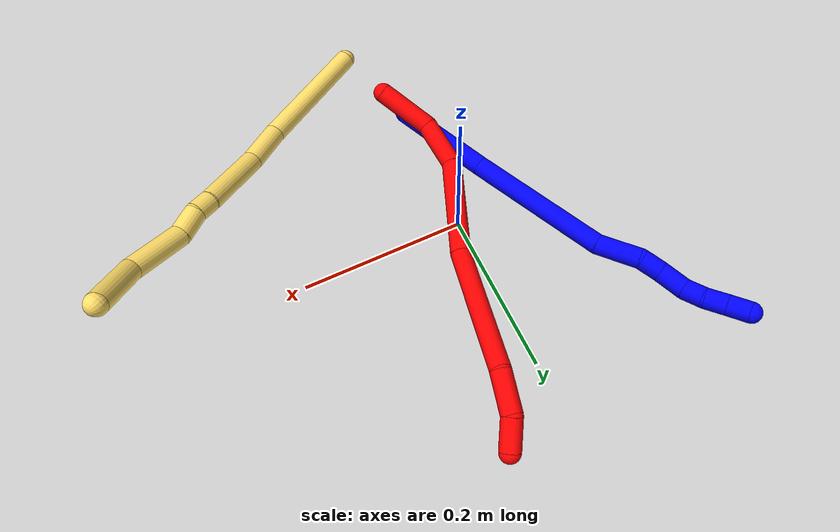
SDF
<sdf version="1.7">
 <world name="default">
  <model name="photoneo_s_sensor">
   <static>1</static>
   <pose>0 0 2 1.57079 1.57079 3.14159</pose>
   <link name="link">
    <inertial><mass>0.1</mass></inertial>
    <sensor name="sensor" type="depth">
     <update_rate>30</update_rate>
     <camera>
      <horizontal_fov>1.22</horizontal_fov>
      <image><width>1920</width><height>1200</height><format>B8G8R8</format></image>
      <clip><near>0.1</near><far>2</far></clip>
      <depth_camera><output>points</output></depth_camera>
     </camera>
     <plugin name="camera_plugin" filename="libgazebo_ros_depth_camera.so">
      <baseline>0.2</baseline>
      <alwaysOn>1</alwaysOn>
      <updateRate>0.0</updateRate>
      <cameraName>camera_ir</cameraName>
      <imageTopicName>/camera/color/image_raw</imageTopicName>
      <cameraInfoTopicName>/camera/color/camera_info</cameraInfoTopicName>
      <depthImageTopicName>/camera/depth/image_raw</depthImageTopicName>
      <depthImageCameraInfoTopicName>/camera/depth/camera_info</depthImageCameraInfoTopicName>
      <pointCloudTopicName>/camera/depth/points</pointCloudTopicName>
      <frameName>fr_optical</frameName>
      <pointCloudCutoff>0.1</pointCloudCutoff>
      <pointCloudCutoffMax>2.0</pointCloudCutoffMax>
      <distortionK1>0</distortionK1>
      <distortionK2>0</distortionK2>
      <distortionK3>0</distortionK3>
      <distortionT1>0</distortionT1>
      <distortionT2>0</distortionT2>
      <CxPrime>0</CxPrime>
      <Cx>0</Cx>
      <Cy>0</Cy>
      <focalLength>0</focalLength>
      <hackBaseline>0</hackBaseline>
     </plugin>
    </sensor>
   </link>
  </model>
  <model name="bin">
   <static>1</static>
   <link name="bottom">
    <collision name="collision-bottom">
     <pose>0 0 -0.01 0 -0 0</pose>
     <geometry><box><size>0.8 0.6 0.02</size></box></geometry>
     <surface>
      <friction><ode><mu>100</mu><mu2>100</mu2></ode></friction>
      <contact><collide_bitmask>65535</collide_bitmask></contact>
     </surface>
    </collision>
   </link>
   <link name="west_wall">
    <collision name="collision-west_wall">
     <pose>-0.41 0 0.1 0 -0 0</pose>
     <geometry><box><size>0.02 0.6 0.2</size></box></geometry>
     <surface>
      <friction><ode><mu>100</mu><mu2>100</mu2></ode></friction>
      <contact><collide_bitmask>65535</collide_bitmask></contact>
     </surface>
    </collision>
   </link>
   <link name="east_wall">
    <collision name="collision-east_wall">
     <pose>0.41 0 0.1 0 -0 0</pose>
     <geometry><box><size>0.02 0.6 0.2</size></box></geometry>
     <surface>
      <friction><ode><mu>100</mu><mu2>100</mu2></ode></friction>
      <contact><collide_bitmask>65535</collide_bitmask></contact>
     </surface>
    </collision>
   </link>
   <link name="south_wall">
    <collision name="collision-south_wall">
     <pose>0 -0.31 0.1 0 -0 0</pose>
     <geometry><box><size>0.8 0.02 0.2</size></box></geometry>
     <surface>
      <friction><ode><mu>100</mu><mu2>100</mu2></ode></friction>
      <contact><collide_bitmask>65535</collide_bitmask></contact>
     </surface>
    </collision>
   </link>
   <link name="north_wall">
    <collision name="collision-north_wall">
     <pose>0 0.31 0.1 0 -0 0</pose>
     <geometry><box><size>0.8 0.02 0.2</size></box></geometry>
     <surface>
      <friction><ode><mu>100</mu><mu2>100</mu2></ode></friction>
      <contact><collide_bitmask>65535</collide_bitmask></contact>
     </surface>
    </collision>
   </link>
  </model>
  <model name="1">
   <static>0</static>
   <link name="1">
    <collision name="collision-cylinder-e_1_1_4">
     <pose>-0.016939 0.032809 0.05292 -0.554974 -0.265625 0.076071</pose>
     <geometry><cylinder><radius>0.0125</radius><length>0.129056</length></cylinder></geometry>
     <surface>
      <friction><ode><mu>1.16</mu><mu2>1.16</mu2><slip1>0</slip1><slip2>0</slip2></ode></friction>
      <contact><ode><kp>1e+06</kp><kd>1</kd><max_vel>0</max_vel><min_depth>0.001</min_depth></ode></contact>
     </surface>
    </collision>
    <visual name="visual-cylinder-e_1_1_4">
     <pose>-0.016939 0.032809 0.05292 -0.554974 -0.265625 0.076071</pose>
     <geometry><cylinder><radius>0.0125</radius><length>0.129056</length></cylinder></geometry>
     <material><ambient>0 0 1 1</ambient></material>
    </visual>
    <collision name="collision-cylinder-e_2_4_5">
     <pose>-0.055065 0.111319 0.180028 -0.552117 -0.238514 0.067865</pose>
     <geometry><cylinder><radius>0.0125</radius><length>0.179348</length></cylinder></geometry>
     <surface>
      <friction><ode><mu>1.16</mu><mu2>1.16</mu2><slip1>0</slip1><slip2>0</slip2></ode></friction>
      <contact><ode><kp>1e+06</kp><kd>1</kd><max_vel>0</max_vel><min_depth>0.001</min_depth></ode></contact>
     </surface>
    </collision>
    <visual name="visual-cylinder-e_2_4_5">
     <pose>-0.055065 0.111319 0.180028 -0.552117 -0.238514 0.067865</pose>
     <geometry><cylinder><radius>0.0125</radius><length>0.179348</length></cylinder></geometry>
     <material><ambient>0 0 1 1</ambient></material>
    </visual>
    <collision name="collision-cylinder-e_3_5_6">
     <pose>-0.077482 0.166369 0.279145 -0.358774 -0.046206 0.00838</pose>
     <geometry><cylinder><radius>0.0125</radius><length>0.053304</length></cylinder></geometry>
     <surface>
      <friction><ode><mu>1.16</mu><mu2>1.16</mu2><slip1>0</slip1><slip2>0</slip2></ode></friction>
      <contact><ode><kp>1e+06</kp><kd>1</kd><max_vel>0</max_vel><min_depth>0.001</min_depth></ode></contact>
     </surface>
    </collision>
    <visual name="visual-cylinder-e_3_5_6">
     <pose>-0.077482 0.166369 0.279145 -0.358774 -0.046206 0.00838</pose>
     <geometry><cylinder><radius>0.0125</radius><length>0.053304</length></cylinder></geometry>
     <material><ambient>0 0 1 1</ambient></material>
    </visual>
    <collision name="collision-cylinder-e_4_6_7">
     <pose>-0.08396 0.179466 0.315599 -0.314449 -0.408537 0.065659</pose>
     <geometry><cylinder><radius>0.0125</radius><length>0.026413</length></cylinder></geometry>
     <surface>
      <friction><ode><mu>1.16</mu><mu2>1.16</mu2><slip1>0</slip1><slip2>0</slip2></ode></friction>
      <contact><ode><kp>1e+06</kp><kd>1</kd><max_vel>0</max_vel><min_depth>0.001</min_depth></ode></contact>
     </surface>
    </collision>
    <visual name="visual-cylinder-e_4_6_7">
     <pose>-0.08396 0.179466 0.315599 -0.314449 -0.408537 0.065659</pose>
     <geometry><cylinder><radius>0.0125</radius><length>0.026413</length></cylinder></geometry>
     <material><ambient>0 0 1 1</ambient></material>
    </visual>
    <collision name="collision-cylinder-e_5_7_8">
     <pose>-0.094919 0.191103 0.34129 -0.508107 -0.338753 0.088755</pose>
     <geometry><cylinder><radius>0.0125</radius><length>0.034383</length></cylinder></geometry>
     <surface>
      <friction><ode><mu>1.16</mu><mu2>1.16</mu2><slip1>0</slip1><slip2>0</slip2></ode></friction>
      <contact><ode><kp>1e+06</kp><kd>1</kd><max_vel>0</max_vel><min_depth>0.001</min_depth></ode></contact>
     </surface>
    </collision>
    <visual name="visual-cylinder-e_5_7_8">
     <pose>-0.094919 0.191103 0.34129 -0.508107 -0.338753 0.088755</pose>
     <geometry><cylinder><radius>0.0125</radius><length>0.034383</length></cylinder></geometry>
     <material><ambient>0 0 1 1</ambient></material>
    </visual>
    <collision name="collision-cylinder-e_6_8_9">
     <pose>-0.099545 0.20709 0.365734 -0.667317 0.082847 -0.028731</pose>
     <geometry><cylinder><radius>0.0125</radius><length>0.02626</length></cylinder></geometry>
     <surface>
      <friction><ode><mu>1.16</mu><mu2>1.16</mu2><slip1>0</slip1><slip2>0</slip2></ode></friction>
      <contact><ode><kp>1e+06</kp><kd>1</kd><max_vel>0</max_vel><min_depth>0.001</min_depth></ode></contact>
     </surface>
    </collision>
    <visual name="visual-cylinder-e_6_8_9">
     <pose>-0.099545 0.20709 0.365734 -0.667317 0.082847 -0.028731</pose>
     <geometry><cylinder><radius>0.0125</radius><length>0.02626</length></cylinder></geometry>
     <material><ambient>0 0 1 1</ambient></material>
    </visual>
    <collision name="collision-cylinder-e_7_9_10">
     <pose>-0.097948 0.220291 0.387719 -0.411105 0.039987 -0.008338</pose>
     <geometry><cylinder><radius>0.0125</radius><length>0.025563</length></cylinder></geometry>
     <surface>
      <friction><ode><mu>1.16</mu><mu2>1.16</mu2><slip1>0</slip1><slip2>0</slip2></ode></friction>
      <contact><ode><kp>1e+06</kp><kd>1</kd><max_vel>0</max_vel><min_depth>0.001</min_depth></ode></contact>
     </surface>
    </collision>
    <visual name="visual-cylinder-e_7_9_10">
     <pose>-0.097948 0.220291 0.387719 -0.411105 0.039987 -0.008338</pose>
     <geometry><cylinder><radius>0.0125</radius><length>0.025563</length></cylinder></geometry>
     <material><ambient>0 0 1 1</ambient></material>
    </visual>
    <collision name="collision-cylinder-e_8_10_2">
     <pose>-0.096886 0.230856 0.41103 -0.43985 0.042924 -0.009597</pose>
     <geometry><cylinder><radius>0.0125</radius><length>0.025674</length></cylinder></geometry>
     <surface>
      <friction><ode><mu>1.16</mu><mu2>1.16</mu2><slip1>0</slip1><slip2>0</slip2></ode></friction>
      <contact><ode><kp>1e+06</kp><kd>1</kd><max_vel>0</max_vel><min_depth>0.001</min_depth></ode></contact>
     </surface>
    </collision>
    <visual name="visual-cylinder-e_8_10_2">
     <pose>-0.096886 0.230856 0.41103 -0.43985 0.042924 -0.009597</pose>
     <geometry><cylinder><radius>0.0125</radius><length>0.025674</length></cylinder></geometry>
     <material><ambient>0 0 1 1</ambient></material>
    </visual>
    <collision name="collision-sphere-2">
     <pose>-0.096335 0.236317 0.422635 0 -0 0</pose>
     <geometry><sphere><radius>0.0125</radius></sphere></geometry>
     <surface>
      <friction><ode><mu>1.16</mu><mu2>1.16</mu2><slip1>0</slip1><slip2>0</slip2></ode></friction>
      <contact><ode><kp>1e+06</kp><kd>1</kd><max_vel>0</max_vel><min_depth>0.001</min_depth></ode></contact>
     </surface>
    </collision>
    <visual name="visual-sphere-2">
     <pose>-0.096335 0.236317 0.422635 0 -0 0</pose>
     <geometry><sphere><radius>0.0125</radius></sphere></geometry>
     <material><ambient>0 0 1 1</ambient></material>
    </visual>
    <collision name="collision-sphere-10">
     <pose>-0.097437 0.225395 0.399426 0 -0 0</pose>
     <geometry><sphere><radius>0.0125</radius></sphere></geometry>
     <surface>
      <friction><ode><mu>1.16</mu><mu2>1.16</mu2><slip1>0</slip1><slip2>0</slip2></ode></friction>
      <contact><ode><kp>1e+06</kp><kd>1</kd><max_vel>0</max_vel><min_depth>0.001</min_depth></ode></contact>
     </surface>
    </collision>
    <visual name="visual-sphere-10">
     <pose>-0.097437 0.225395 0.399426 0 -0 0</pose>
     <geometry><sphere><radius>0.0125</radius></sphere></geometry>
     <material><ambient>0 0 1 1</ambient></material>
    </visual>
    <collision name="collision-sphere-9">
     <pose>-0.098459 0.215188 0.376012 0 -0 0</pose>
     <geometry><sphere><radius>0.0125</radius></sphere></geometry>
     <surface>
      <friction><ode><mu>1.16</mu><mu2>1.16</mu2><slip1>0</slip1><slip2>0</slip2></ode></friction>
      <contact><ode><kp>1e+06</kp><kd>1</kd><max_vel>0</max_vel><min_depth>0.001</min_depth></ode></contact>
     </surface>
    </collision>
    <visual name="visual-sphere-9">
     <pose>-0.098459 0.215188 0.376012 0 -0 0</pose>
     <geometry><sphere><radius>0.0125</radius></sphere></geometry>
     <material><ambient>0 0 1 1</ambient></material>
    </visual>
    <collision name="collision-sphere-4">
     <pose>-0.033879 0.065617 0.10584 0 -0 0</pose>
     <geometry><sphere><radius>0.0125</radius></sphere></geometry>
     <surface>
      <friction><ode><mu>1.16</mu><mu2>1.16</mu2><slip1>0</slip1><slip2>0</slip2></ode></friction>
      <contact><ode><kp>1e+06</kp><kd>1</kd><max_vel>0</max_vel><min_depth>0.001</min_depth></ode></contact>
     </surface>
    </collision>
    <visual name="visual-sphere-4">
     <pose>-0.033879 0.065617 0.10584 0 -0 0</pose>
     <geometry><sphere><radius>0.0125</radius></sphere></geometry>
     <material><ambient>0 0 1 1</ambient></material>
    </visual>
    <collision name="collision-sphere-1">
     <geometry><sphere><radius>0.0125</radius></sphere></geometry>
     <surface>
      <friction><ode><mu>1.16</mu><mu2>1.16</mu2><slip1>0</slip1><slip2>0</slip2></ode></friction>
      <contact><ode><kp>1e+06</kp><kd>1</kd><max_vel>0</max_vel><min_depth>0.001</min_depth></ode></contact>
     </surface>
    </collision>
    <visual name="visual-sphere-1">
     <geometry><sphere><radius>0.0125</radius></sphere></geometry>
     <material><ambient>0 0 1 1</ambient></material>
    </visual>
    <collision name="collision-sphere-8">
     <pose>-0.100632 0.198992 0.355456 0 -0 0</pose>
     <geometry><sphere><radius>0.0125</radius></sphere></geometry>
     <surface>
      <friction><ode><mu>1.16</mu><mu2>1.16</mu2><slip1>0</slip1><slip2>0</slip2></ode></friction>
      <contact><ode><kp>1e+06</kp><kd>1</kd><max_vel>0</max_vel><min_depth>0.001</min_depth></ode></contact>
     </surface>
    </collision>
    <visual name="visual-sphere-8">
     <pose>-0.100632 0.198992 0.355456 0 -0 0</pose>
     <geometry><sphere><radius>0.0125</radius></sphere></geometry>
     <material><ambient>0 0 1 1</ambient></material>
    </visual>
    <collision name="collision-sphere-5">
     <pose>-0.076251 0.157021 0.254216 0 -0 0</pose>
     <geometry><sphere><radius>0.0125</radius></sphere></geometry>
     <surface>
      <friction><ode><mu>1.16</mu><mu2>1.16</mu2><slip1>0</slip1><slip2>0</slip2></ode></friction>
      <contact><ode><kp>1e+06</kp><kd>1</kd><max_vel>0</max_vel><min_depth>0.001</min_depth></ode></contact>
     </surface>
    </collision>
    <visual name="visual-sphere-5">
     <pose>-0.076251 0.157021 0.254216 0 -0 0</pose>
     <geometry><sphere><radius>0.0125</radius></sphere></geometry>
     <material><ambient>0 0 1 1</ambient></material>
    </visual>
    <collision name="collision-sphere-6">
     <pose>-0.078713 0.175717 0.304073 0 -0 0</pose>
     <geometry><sphere><radius>0.0125</radius></sphere></geometry>
     <surface>
      <friction><ode><mu>1.16</mu><mu2>1.16</mu2><slip1>0</slip1><slip2>0</slip2></ode></friction>
      <contact><ode><kp>1e+06</kp><kd>1</kd><max_vel>0</max_vel><min_depth>0.001</min_depth></ode></contact>
     </surface>
    </collision>
    <visual name="visual-sphere-6">
     <pose>-0.078713 0.175717 0.304073 0 -0 0</pose>
     <geometry><sphere><radius>0.0125</radius></sphere></geometry>
     <material><ambient>0 0 1 1</ambient></material>
    </visual>
    <collision name="collision-sphere-7">
     <pose>-0.089206 0.183214 0.327124 0 -0 0</pose>
     <geometry><sphere><radius>0.0125</radius></sphere></geometry>
     <surface>
      <friction><ode><mu>1.16</mu><mu2>1.16</mu2><slip1>0</slip1><slip2>0</slip2></ode></friction>
      <contact><ode><kp>1e+06</kp><kd>1</kd><max_vel>0</max_vel><min_depth>0.001</min_depth></ode></contact>
     </surface>
    </collision>
    <visual name="visual-sphere-7">
     <pose>-0.089206 0.183214 0.327124 0 -0 0</pose>
     <geometry><sphere><radius>0.0125</radius></sphere></geometry>
     <material><ambient>0 0 1 1</ambient></material>
    </visual>
    <inertial>
     <pose>-0.058557 0.122749 0.20827 0 -0 0</pose>
     <mass>0.5</mass>
     <inertia>
      <ixx>0.000718</ixx>
      <ixy>0</ixy>
      <ixz>0</ixz>
      <iyy>0.000668</iyy>
      <iyz>0</iyz>
      <izz>-0.000154</izz>
     </inertia>
    </inertial>
   </link>
   <pose>-0.008986 -0.177223 0.011965 1.50026 -1.14169 -2.0556</pose>
  </model>
  <model name="2">
   <static>0</static>
   <link name="2">
    <collision name="collision-cylinder-e_1_1_4">
     <pose>0.025881 0.024058 -0.000377 -1.58645 0.821837 -0.833367</pose>
     <geometry><cylinder><radius>0.0125</radius><length>0.070676</length></cylinder></geometry>
     <surface>
      <friction><ode><mu>1.16</mu><mu2>1.16</mu2><slip1>0</slip1><slip2>0</slip2></ode></friction>
      <contact><ode><kp>1e+06</kp><kd>1</kd><max_vel>0</max_vel><min_depth>0.001</min_depth></ode></contact>
     </surface>
    </collision>
    <visual name="visual-cylinder-e_1_1_4">
     <pose>0.025881 0.024058 -0.000377 -1.58645 0.821837 -0.833367</pose>
     <geometry><cylinder><radius>0.0125</radius><length>0.070676</length></cylinder></geometry>
     <material><ambient>1 0 0 1</ambient></material>
    </visual>
    <collision name="collision-cylinder-e_2_4_5">
     <pose>0.062988 0.076024 0.000812 -1.51475 0.381852 -0.36149</pose>
     <geometry><cylinder><radius>0.0125</radius><length>0.060244</length></cylinder></geometry>
     <surface>
      <friction><ode><mu>1.16</mu><mu2>1.16</mu2><slip1>0</slip1><slip2>0</slip2></ode></friction>
      <contact><ode><kp>1e+06</kp><kd>1</kd><max_vel>0</max_vel><min_depth>0.001</min_depth></ode></contact>
     </surface>
    </collision>
    <visual name="visual-cylinder-e_2_4_5">
     <pose>0.062988 0.076024 0.000812 -1.51475 0.381852 -0.36149</pose>
     <geometry><cylinder><radius>0.0125</radius><length>0.060244</length></cylinder></geometry>
     <material><ambient>1 0 0 1</ambient></material>
    </visual>
    <collision name="collision-cylinder-e_3_5_6">
     <pose>0.068439 0.165699 0.011027 -1.43168 -0.092302 0.080292</pose>
     <geometry><cylinder><radius>0.0125</radius><length>0.12527</length></cylinder></geometry>
     <surface>
      <friction><ode><mu>1.16</mu><mu2>1.16</mu2><slip1>0</slip1><slip2>0</slip2></ode></friction>
      <contact><ode><kp>1e+06</kp><kd>1</kd><max_vel>0</max_vel><min_depth>0.001</min_depth></ode></contact>
     </surface>
    </collision>
    <visual name="visual-cylinder-e_3_5_6">
     <pose>0.068439 0.165699 0.011027 -1.43168 -0.092302 0.080292</pose>
     <geometry><cylinder><radius>0.0125</radius><length>0.12527</length></cylinder></geometry>
     <material><ambient>1 0 0 1</ambient></material>
    </visual>
    <collision name="collision-cylinder-e_4_6_7">
     <pose>0.062841 0.305413 0.0128 -1.65878 0.002239 -0.002446</pose>
     <geometry><cylinder><radius>0.0125</radius><length>0.156502</length></cylinder></geometry>
     <surface>
      <friction><ode><mu>1.16</mu><mu2>1.16</mu2><slip1>0</slip1><slip2>0</slip2></ode></friction>
      <contact><ode><kp>1e+06</kp><kd>1</kd><max_vel>0</max_vel><min_depth>0.001</min_depth></ode></contact>
     </surface>
    </collision>
    <visual name="visual-cylinder-e_4_6_7">
     <pose>0.062841 0.305413 0.0128 -1.65878 0.002239 -0.002446</pose>
     <geometry><cylinder><radius>0.0125</radius><length>0.156502</length></cylinder></geometry>
     <material><ambient>1 0 0 1</ambient></material>
    </visual>
    <collision name="collision-cylinder-e_5_7_8">
     <pose>0.064968 0.407691 0.009958 -1.40652 0.078974 -0.06697</pose>
     <geometry><cylinder><radius>0.0125</radius><length>0.049477</length></cylinder></geometry>
     <surface>
      <friction><ode><mu>1.16</mu><mu2>1.16</mu2><slip1>0</slip1><slip2>0</slip2></ode></friction>
      <contact><ode><kp>1e+06</kp><kd>1</kd><max_vel>0</max_vel><min_depth>0.001</min_depth></ode></contact>
     </surface>
    </collision>
    <visual name="visual-cylinder-e_5_7_8">
     <pose>0.064968 0.407691 0.009958 -1.40652 0.078974 -0.06697</pose>
     <geometry><cylinder><radius>0.0125</radius><length>0.049477</length></cylinder></geometry>
     <material><ambient>1 0 0 1</ambient></material>
    </visual>
    <collision name="collision-cylinder-e_6_8_2">
     <pose>0.066255 0.448138 0.023867 -1.02105 -0.035159 0.019692</pose>
     <geometry><cylinder><radius>0.0125</radius><length>0.037831</length></cylinder></geometry>
     <surface>
      <friction><ode><mu>1.16</mu><mu2>1.16</mu2><slip1>0</slip1><slip2>0</slip2></ode></friction>
      <contact><ode><kp>1e+06</kp><kd>1</kd><max_vel>0</max_vel><min_depth>0.001</min_depth></ode></contact>
     </surface>
    </collision>
    <visual name="visual-cylinder-e_6_8_2">
     <pose>0.066255 0.448138 0.023867 -1.02105 -0.035159 0.019692</pose>
     <geometry><cylinder><radius>0.0125</radius><length>0.037831</length></cylinder></geometry>
     <material><ambient>1 0 0 1</ambient></material>
    </visual>
    <collision name="collision-sphere-2">
     <pose>0.06559 0.464257 0.033744 0 -0 0</pose>
     <geometry><sphere><radius>0.0125</radius></sphere></geometry>
     <surface>
      <friction><ode><mu>1.16</mu><mu2>1.16</mu2><slip1>0</slip1><slip2>0</slip2></ode></friction>
      <contact><ode><kp>1e+06</kp><kd>1</kd><max_vel>0</max_vel><min_depth>0.001</min_depth></ode></contact>
     </surface>
    </collision>
    <visual name="visual-sphere-2">
     <pose>0.06559 0.464257 0.033744 0 -0 0</pose>
     <geometry><sphere><radius>0.0125</radius></sphere></geometry>
     <material><ambient>1 0 0 1</ambient></material>
    </visual>
    <collision name="collision-sphere-4">
     <pose>0.051763 0.048116 -0.000753 0 -0 0</pose>
     <geometry><sphere><radius>0.0125</radius></sphere></geometry>
     <surface>
      <friction><ode><mu>1.16</mu><mu2>1.16</mu2><slip1>0</slip1><slip2>0</slip2></ode></friction>
      <contact><ode><kp>1e+06</kp><kd>1</kd><max_vel>0</max_vel><min_depth>0.001</min_depth></ode></contact>
     </surface>
    </collision>
    <visual name="visual-sphere-4">
     <pose>0.051763 0.048116 -0.000753 0 -0 0</pose>
     <geometry><sphere><radius>0.0125</radius></sphere></geometry>
     <material><ambient>1 0 0 1</ambient></material>
    </visual>
    <collision name="collision-sphere-1">
     <geometry><sphere><radius>0.0125</radius></sphere></geometry>
     <surface>
      <friction><ode><mu>1.16</mu><mu2>1.16</mu2><slip1>0</slip1><slip2>0</slip2></ode></friction>
      <contact><ode><kp>1e+06</kp><kd>1</kd><max_vel>0</max_vel><min_depth>0.001</min_depth></ode></contact>
     </surface>
    </collision>
    <visual name="visual-sphere-1">
     <geometry><sphere><radius>0.0125</radius></sphere></geometry>
     <material><ambient>1 0 0 1</ambient></material>
    </visual>
    <collision name="collision-sphere-8">
     <pose>0.06692 0.43202 0.013991 0 -0 0</pose>
     <geometry><sphere><radius>0.0125</radius></sphere></geometry>
     <surface>
      <friction><ode><mu>1.16</mu><mu2>1.16</mu2><slip1>0</slip1><slip2>0</slip2></ode></friction>
      <contact><ode><kp>1e+06</kp><kd>1</kd><max_vel>0</max_vel><min_depth>0.001</min_depth></ode></contact>
     </surface>
    </collision>
    <visual name="visual-sphere-8">
     <pose>0.06692 0.43202 0.013991 0 -0 0</pose>
     <geometry><sphere><radius>0.0125</radius></sphere></geometry>
     <material><ambient>1 0 0 1</ambient></material>
    </visual>
    <collision name="collision-sphere-5">
     <pose>0.074212 0.103933 0.002378 0 -0 0</pose>
     <geometry><sphere><radius>0.0125</radius></sphere></geometry>
     <surface>
      <friction><ode><mu>1.16</mu><mu2>1.16</mu2><slip1>0</slip1><slip2>0</slip2></ode></friction>
      <contact><ode><kp>1e+06</kp><kd>1</kd><max_vel>0</max_vel><min_depth>0.001</min_depth></ode></contact>
     </surface>
    </collision>
    <visual name="visual-sphere-5">
     <pose>0.074212 0.103933 0.002378 0 -0 0</pose>
     <geometry><sphere><radius>0.0125</radius></sphere></geometry>
     <material><ambient>1 0 0 1</ambient></material>
    </visual>
    <collision name="collision-sphere-6">
     <pose>0.062666 0.227465 0.019676 0 -0 0</pose>
     <geometry><sphere><radius>0.0125</radius></sphere></geometry>
     <surface>
      <friction><ode><mu>1.16</mu><mu2>1.16</mu2><slip1>0</slip1><slip2>0</slip2></ode></friction>
      <contact><ode><kp>1e+06</kp><kd>1</kd><max_vel>0</max_vel><min_depth>0.001</min_depth></ode></contact>
     </surface>
    </collision>
    <visual name="visual-sphere-6">
     <pose>0.062666 0.227465 0.019676 0 -0 0</pose>
     <geometry><sphere><radius>0.0125</radius></sphere></geometry>
     <material><ambient>1 0 0 1</ambient></material>
    </visual>
    <collision name="collision-sphere-7">
     <pose>0.063016 0.383361 0.005924 0 -0 0</pose>
     <geometry><sphere><radius>0.0125</radius></sphere></geometry>
     <surface>
      <friction><ode><mu>1.16</mu><mu2>1.16</mu2><slip1>0</slip1><slip2>0</slip2></ode></friction>
      <contact><ode><kp>1e+06</kp><kd>1</kd><max_vel>0</max_vel><min_depth>0.001</min_depth></ode></contact>
     </surface>
    </collision>
    <visual name="visual-sphere-7">
     <pose>0.063016 0.383361 0.005924 0 -0 0</pose>
     <geometry><sphere><radius>0.0125</radius></sphere></geometry>
     <material><ambient>1 0 0 1</ambient></material>
    </visual>
    <inertial>
     <pose>0.059506 0.22392 0.009605 0 -0 0</pose>
     <mass>0.5</mass>
     <inertia>
      <ixx>0.000538</ixx>
      <ixy>0</ixy>
      <ixz>0</ixz>
      <iyy>4.7e-05</iyy>
      <iyz>0</iyz>
      <izz>-0.000563</izz>
     </inertia>
    </inertial>
   </link>
   <pose>0.014701 -0.187998 0.054633 3.10398 0.449294 2.90141</pose>
  </model>
  <model name="5">
   <static>0</static>
   <link name="5">
    <collision name="collision-cylinder-e_1_1_4">
     <pose>0.004773 -0.003279 0.081285 0.040319 0.058605 0.001182</pose>
     <geometry><cylinder><radius>0.0125</radius><length>0.162982</length></cylinder></geometry>
     <surface>
      <friction><ode><mu>1.16</mu><mu2>1.16</mu2><slip1>0</slip1><slip2>0</slip2></ode></friction>
      <contact><ode><kp>1e+06</kp><kd>1</kd><max_vel>0</max_vel><min_depth>0.001</min_depth></ode></contact>
     </surface>
    </collision>
    <visual name="visual-cylinder-e_1_1_4">
     <pose>0.004773 -0.003279 0.081285 0.040319 0.058605 0.001182</pose>
     <geometry><cylinder><radius>0.0125</radius><length>0.162982</length></cylinder></geometry>
     <material><ambient>1 0.858824 0.4 1</ambient></material>
    </visual>
    <collision name="collision-cylinder-e_2_4_5">
     <pose>0.014854 -0.007704 0.189543 0.042445 0.194151 0.004134</pose>
     <geometry><cylinder><radius>0.0125</radius><length>0.055028</length></cylinder></geometry>
     <surface>
      <friction><ode><mu>1.16</mu><mu2>1.16</mu2><slip1>0</slip1><slip2>0</slip2></ode></friction>
      <contact><ode><kp>1e+06</kp><kd>1</kd><max_vel>0</max_vel><min_depth>0.001</min_depth></ode></contact>
     </surface>
    </collision>
    <visual name="visual-cylinder-e_2_4_5">
     <pose>0.014854 -0.007704 0.189543 0.042445 0.194151 0.004134</pose>
     <geometry><cylinder><radius>0.0125</radius><length>0.055028</length></cylinder></geometry>
     <material><ambient>1 0.858824 0.4 1</ambient></material>
    </visual>
    <collision name="collision-cylinder-e_3_5_6">
     <pose>0.032974 -0.004373 0.259548 -0.103659 0.287884 -0.015038</pose>
     <geometry><cylinder><radius>0.0125</radius><length>0.090243</length></cylinder></geometry>
     <surface>
      <friction><ode><mu>1.16</mu><mu2>1.16</mu2><slip1>0</slip1><slip2>0</slip2></ode></friction>
      <contact><ode><kp>1e+06</kp><kd>1</kd><max_vel>0</max_vel><min_depth>0.001</min_depth></ode></contact>
     </surface>
    </collision>
    <visual name="visual-cylinder-e_3_5_6">
     <pose>0.032974 -0.004373 0.259548 -0.103659 0.287884 -0.015038</pose>
     <geometry><cylinder><radius>0.0125</radius><length>0.090243</length></cylinder></geometry>
     <material><ambient>1 0.858824 0.4 1</ambient></material>
    </visual>
    <collision name="collision-cylinder-e_4_6_7">
     <pose>0.04756 0.001358 0.314175 -0.10776 0.151076 -0.008163</pose>
     <geometry><cylinder><radius>0.0125</radius><length>0.023592</length></cylinder></geometry>
     <surface>
      <friction><ode><mu>1.16</mu><mu2>1.16</mu2><slip1>0</slip1><slip2>0</slip2></ode></friction>
      <contact><ode><kp>1e+06</kp><kd>1</kd><max_vel>0</max_vel><min_depth>0.001</min_depth></ode></contact>
     </surface>
    </collision>
    <visual name="visual-cylinder-e_4_6_7">
     <pose>0.04756 0.001358 0.314175 -0.10776 0.151076 -0.008163</pose>
     <geometry><cylinder><radius>0.0125</radius><length>0.023592</length></cylinder></geometry>
     <material><ambient>1 0.858824 0.4 1</ambient></material>
    </visual>
    <collision name="collision-cylinder-e_5_7_8">
     <pose>0.051778 0.00014 0.341178 0.159126 0.155247 0.012403</pose>
     <geometry><cylinder><radius>0.0125</radius><length>0.031592</length></cylinder></geometry>
     <surface>
      <friction><ode><mu>1.16</mu><mu2>1.16</mu2><slip1>0</slip1><slip2>0</slip2></ode></friction>
      <contact><ode><kp>1e+06</kp><kd>1</kd><max_vel>0</max_vel><min_depth>0.001</min_depth></ode></contact>
     </surface>
    </collision>
    <visual name="visual-cylinder-e_5_7_8">
     <pose>0.051778 0.00014 0.341178 0.159126 0.155247 0.012403</pose>
     <geometry><cylinder><radius>0.0125</radius><length>0.031592</length></cylinder></geometry>
     <material><ambient>1 0.858824 0.4 1</ambient></material>
    </visual>
    <collision name="collision-cylinder-e_6_8_9">
     <pose>0.058021 0.003551 0.389868 -0.174984 0.111983 -0.009833</pose>
     <geometry><cylinder><radius>0.0125</radius><length>0.068021</length></cylinder></geometry>
     <surface>
      <friction><ode><mu>1.16</mu><mu2>1.16</mu2><slip1>0</slip1><slip2>0</slip2></ode></friction>
      <contact><ode><kp>1e+06</kp><kd>1</kd><max_vel>0</max_vel><min_depth>0.001</min_depth></ode></contact>
     </surface>
    </collision>
    <visual name="visual-cylinder-e_6_8_9">
     <pose>0.058021 0.003551 0.389868 -0.174984 0.111983 -0.009833</pose>
     <geometry><cylinder><radius>0.0125</radius><length>0.068021</length></cylinder></geometry>
     <material><ambient>1 0.858824 0.4 1</ambient></material>
    </visual>
    <collision name="collision-cylinder-e_7_9_2">
     <pose>0.080484 0.015685 0.451205 -0.219187 0.575849 -0.065151</pose>
     <geometry><cylinder><radius>0.0125</radius><length>0.068542</length></cylinder></geometry>
     <surface>
      <friction><ode><mu>1.16</mu><mu2>1.16</mu2><slip1>0</slip1><slip2>0</slip2></ode></friction>
      <contact><ode><kp>1e+06</kp><kd>1</kd><max_vel>0</max_vel><min_depth>0.001</min_depth></ode></contact>
     </surface>
    </collision>
    <visual name="visual-cylinder-e_7_9_2">
     <pose>0.080484 0.015685 0.451205 -0.219187 0.575849 -0.065151</pose>
     <geometry><cylinder><radius>0.0125</radius><length>0.068542</length></cylinder></geometry>
     <material><ambient>1 0.858824 0.4 1</ambient></material>
    </visual>
    <collision name="collision-sphere-2">
     <pose>0.099146 0.021935 0.479262 0 -0 0</pose>
     <geometry><sphere><radius>0.0125</radius></sphere></geometry>
     <surface>
      <friction><ode><mu>1.16</mu><mu2>1.16</mu2><slip1>0</slip1><slip2>0</slip2></ode></friction>
      <contact><ode><kp>1e+06</kp><kd>1</kd><max_vel>0</max_vel><min_depth>0.001</min_depth></ode></contact>
     </surface>
    </collision>
    <visual name="visual-sphere-2">
     <pose>0.099146 0.021935 0.479262 0 -0 0</pose>
     <geometry><sphere><radius>0.0125</radius></sphere></geometry>
     <material><ambient>1 0.858824 0.4 1</ambient></material>
    </visual>
    <collision name="collision-sphere-9">
     <pose>0.061822 0.009435 0.423149 0 -0 0</pose>
     <geometry><sphere><radius>0.0125</radius></sphere></geometry>
     <surface>
      <friction><ode><mu>1.16</mu><mu2>1.16</mu2><slip1>0</slip1><slip2>0</slip2></ode></friction>
      <contact><ode><kp>1e+06</kp><kd>1</kd><max_vel>0</max_vel><min_depth>0.001</min_depth></ode></contact>
     </surface>
    </collision>
    <visual name="visual-sphere-9">
     <pose>0.061822 0.009435 0.423149 0 -0 0</pose>
     <geometry><sphere><radius>0.0125</radius></sphere></geometry>
     <material><ambient>1 0.858824 0.4 1</ambient></material>
    </visual>
    <collision name="collision-sphere-4">
     <pose>0.009546 -0.006558 0.16257 0 -0 0</pose>
     <geometry><sphere><radius>0.0125</radius></sphere></geometry>
     <surface>
      <friction><ode><mu>1.16</mu><mu2>1.16</mu2><slip1>0</slip1><slip2>0</slip2></ode></friction>
      <contact><ode><kp>1e+06</kp><kd>1</kd><max_vel>0</max_vel><min_depth>0.001</min_depth></ode></contact>
     </surface>
    </collision>
    <visual name="visual-sphere-4">
     <pose>0.009546 -0.006558 0.16257 0 -0 0</pose>
     <geometry><sphere><radius>0.0125</radius></sphere></geometry>
     <material><ambient>1 0.858824 0.4 1</ambient></material>
    </visual>
    <collision name="collision-sphere-1">
     <geometry><sphere><radius>0.0125</radius></sphere></geometry>
     <surface>
      <friction><ode><mu>1.16</mu><mu2>1.16</mu2><slip1>0</slip1><slip2>0</slip2></ode></friction>
      <contact><ode><kp>1e+06</kp><kd>1</kd><max_vel>0</max_vel><min_depth>0.001</min_depth></ode></contact>
     </surface>
    </collision>
    <visual name="visual-sphere-1">
     <geometry><sphere><radius>0.0125</radius></sphere></geometry>
     <material><ambient>1 0.858824 0.4 1</ambient></material>
    </visual>
    <collision name="collision-sphere-8">
     <pose>0.054221 -0.002333 0.356586 0 -0 0</pose>
     <geometry><sphere><radius>0.0125</radius></sphere></geometry>
     <surface>
      <friction><ode><mu>1.16</mu><mu2>1.16</mu2><slip1>0</slip1><slip2>0</slip2></ode></friction>
      <contact><ode><kp>1e+06</kp><kd>1</kd><max_vel>0</max_vel><min_depth>0.001</min_depth></ode></contact>
     </surface>
    </collision>
    <visual name="visual-sphere-8">
     <pose>0.054221 -0.002333 0.356586 0 -0 0</pose>
     <geometry><sphere><radius>0.0125</radius></sphere></geometry>
     <material><ambient>1 0.858824 0.4 1</ambient></material>
    </visual>
    <collision name="collision-sphere-5">
     <pose>0.020163 -0.008849 0.216516 0 -0 0</pose>
     <geometry><sphere><radius>0.0125</radius></sphere></geometry>
     <surface>
      <friction><ode><mu>1.16</mu><mu2>1.16</mu2><slip1>0</slip1><slip2>0</slip2></ode></friction>
      <contact><ode><kp>1e+06</kp><kd>1</kd><max_vel>0</max_vel><min_depth>0.001</min_depth></ode></contact>
     </surface>
    </collision>
    <visual name="visual-sphere-5">
     <pose>0.020163 -0.008849 0.216516 0 -0 0</pose>
     <geometry><sphere><radius>0.0125</radius></sphere></geometry>
     <material><ambient>1 0.858824 0.4 1</ambient></material>
    </visual>
    <collision name="collision-sphere-6">
     <pose>0.045785 0.000104 0.302581 0 -0 0</pose>
     <geometry><sphere><radius>0.0125</radius></sphere></geometry>
     <surface>
      <friction><ode><mu>1.16</mu><mu2>1.16</mu2><slip1>0</slip1><slip2>0</slip2></ode></friction>
      <contact><ode><kp>1e+06</kp><kd>1</kd><max_vel>0</max_vel><min_depth>0.001</min_depth></ode></contact>
     </surface>
    </collision>
    <visual name="visual-sphere-6">
     <pose>0.045785 0.000104 0.302581 0 -0 0</pose>
     <geometry><sphere><radius>0.0125</radius></sphere></geometry>
     <material><ambient>1 0.858824 0.4 1</ambient></material>
    </visual>
    <collision name="collision-sphere-7">
     <pose>0.049336 0.002613 0.325769 0 -0 0</pose>
     <geometry><sphere><radius>0.0125</radius></sphere></geometry>
     <surface>
      <friction><ode><mu>1.16</mu><mu2>1.16</mu2><slip1>0</slip1><slip2>0</slip2></ode></friction>
      <contact><ode><kp>1e+06</kp><kd>1</kd><max_vel>0</max_vel><min_depth>0.001</min_depth></ode></contact>
     </surface>
    </collision>
    <visual name="visual-sphere-7">
     <pose>0.049336 0.002613 0.325769 0 -0 0</pose>
     <geometry><sphere><radius>0.0125</radius></sphere></geometry>
     <material><ambient>1 0.858824 0.4 1</ambient></material>
    </visual>
    <inertial>
     <pose>0.033584 0 0.245473 0 -0 0</pose>
     <mass>0.5</mass>
     <inertia>
      <ixx>0.000509</ixx>
      <ixy>0</ixy>
      <ixz>0</ixz>
      <iyy>0.00051</iyy>
      <iyz>0</iyz>
      <izz>-2.7e-05</izz>
     </inertia>
    </inertial>
   </link>
   <pose>0.030437 -0.288503 0.023685 1.3982 -0.608009 2.22568</pose>
  </model>
 </world>
</sdf>
